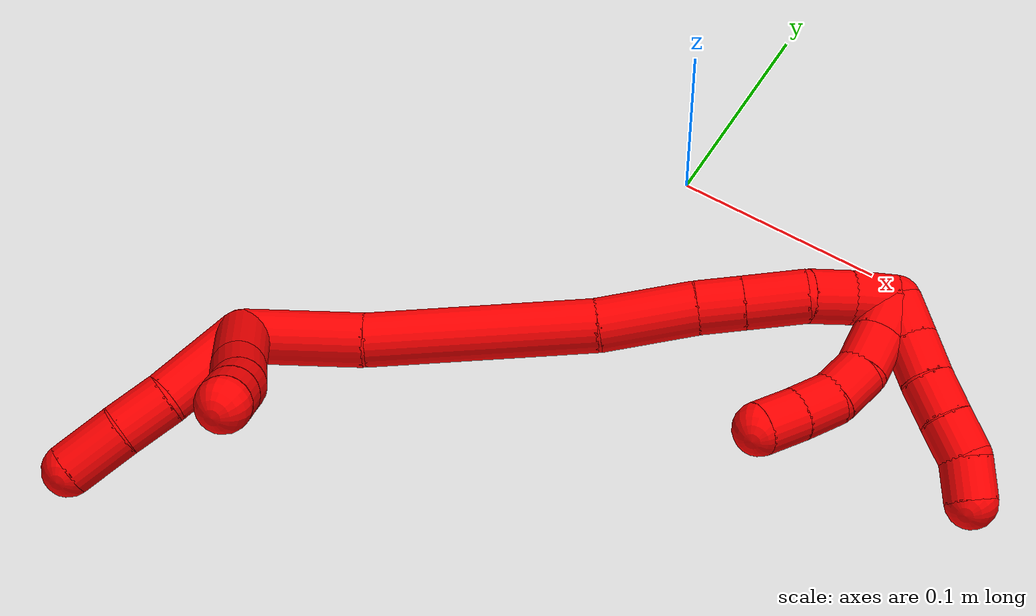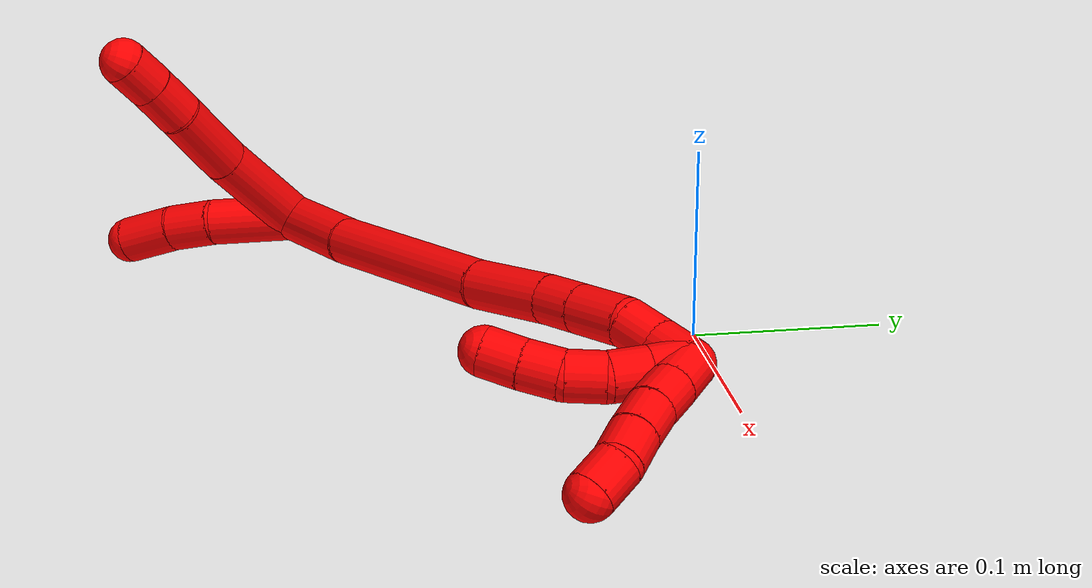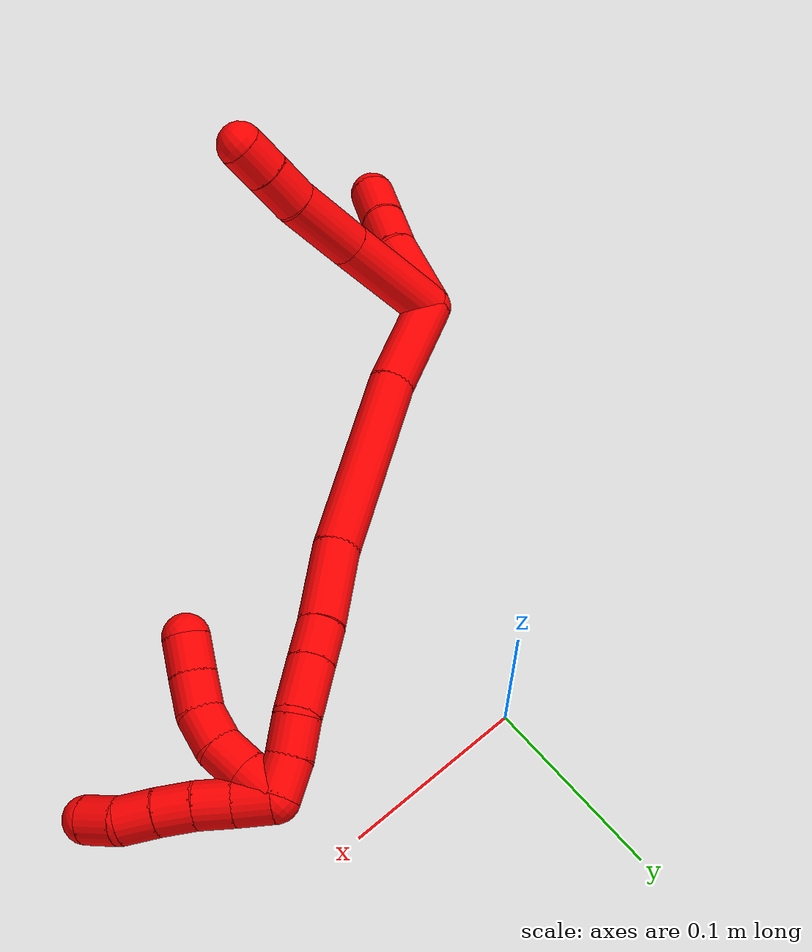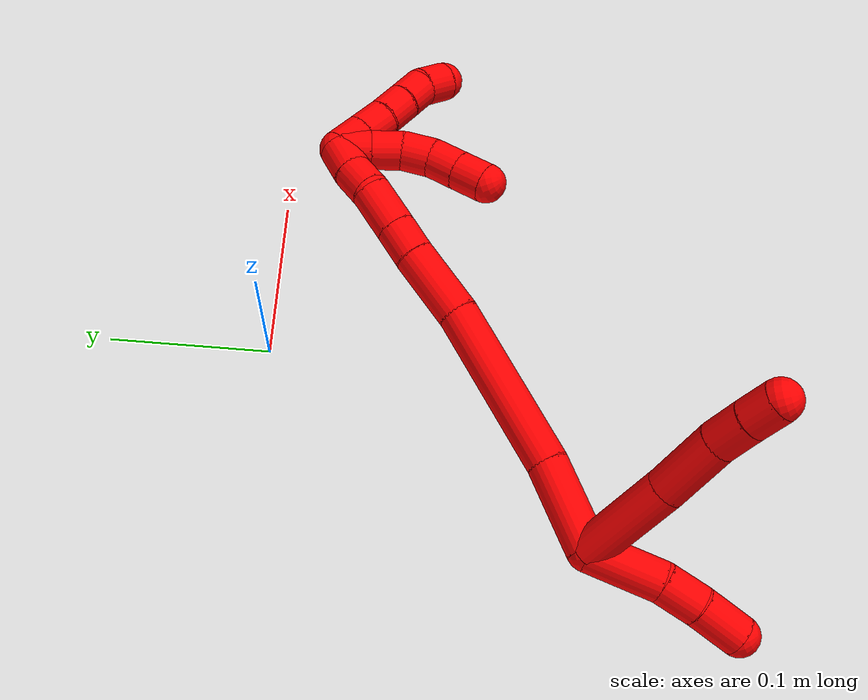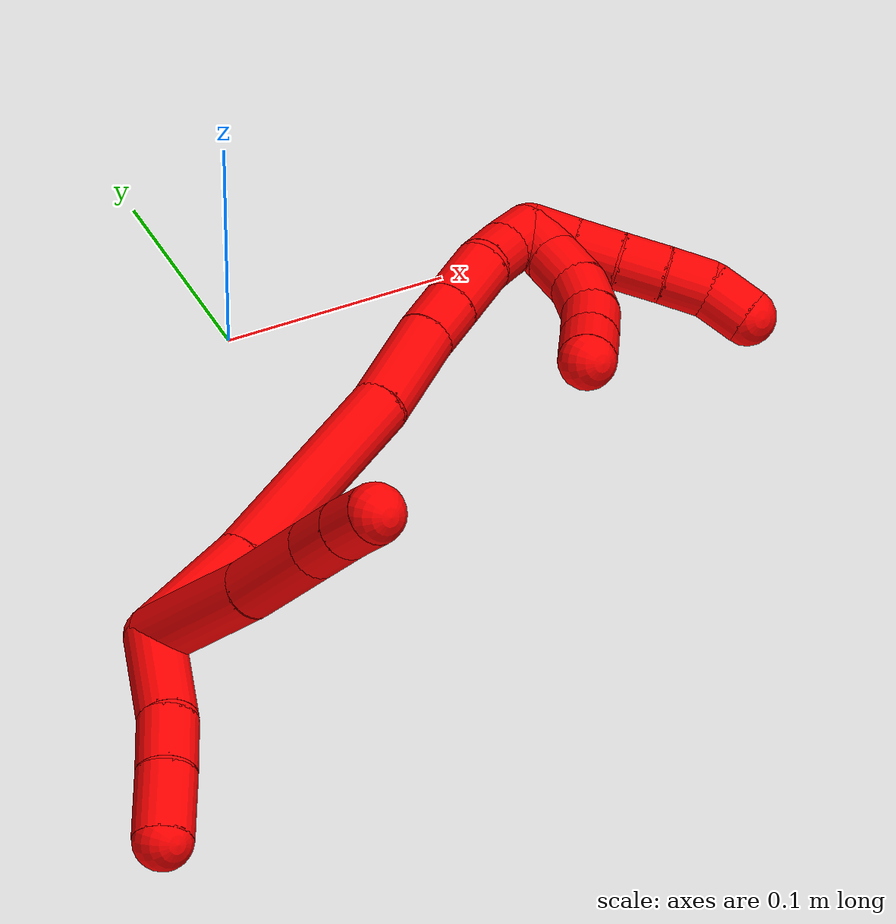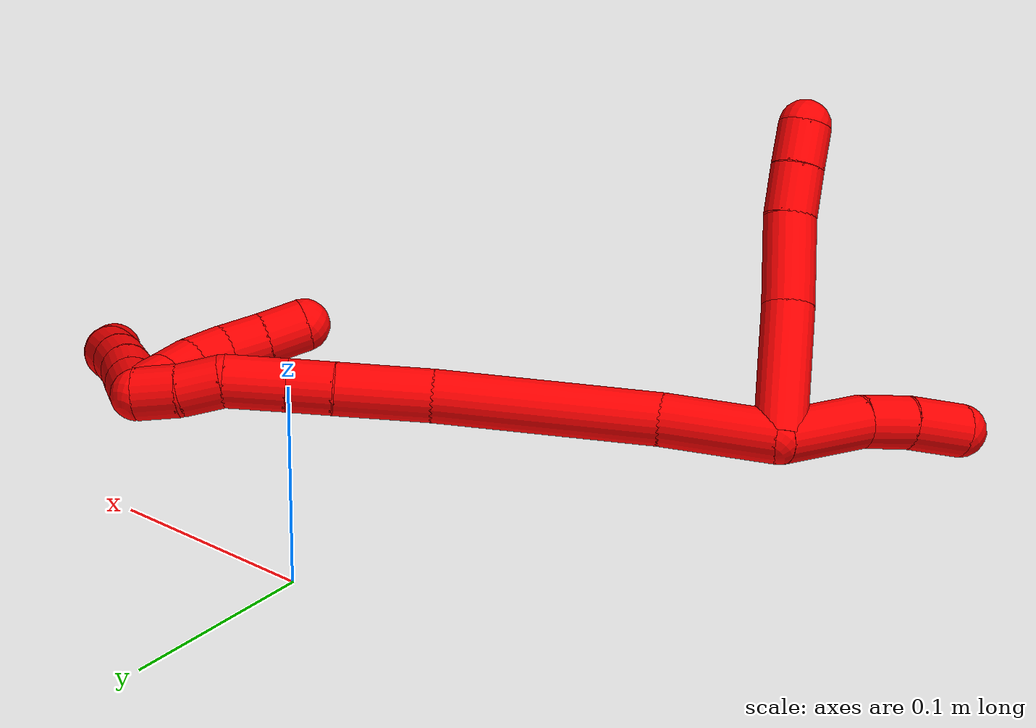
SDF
<sdf version="1.7">
 <world name="default">
  <model name="photoneo_s_sensor">
   <static>1</static>
   <pose>0 0 2 1.57079 1.57079 3.14159</pose>
   <link name="link">
    <inertial><mass>0.1</mass></inertial>
    <sensor name="sensor" type="depth">
     <update_rate>30</update_rate>
     <camera>
      <horizontal_fov>1.22</horizontal_fov>
      <image><width>1920</width><height>1200</height><format>B8G8R8</format></image>
      <clip><near>0.1</near><far>4</far></clip>
      <depth_camera><output>points</output></depth_camera>
     </camera>
     <plugin name="camera_plugin" filename="libgazebo_ros_depth_camera.so">
      <baseline>0.2</baseline>
      <alwaysOn>1</alwaysOn>
      <updateRate>0.0</updateRate>
      <cameraName>camera_ir</cameraName>
      <imageTopicName>/camera/color/image_raw</imageTopicName>
      <cameraInfoTopicName>/camera/color/camera_info</cameraInfoTopicName>
      <depthImageTopicName>/camera/depth/image_raw</depthImageTopicName>
      <depthImageCameraInfoTopicName>/camera/depth/camera_info</depthImageCameraInfoTopicName>
      <pointCloudTopicName>/camera/depth/points</pointCloudTopicName>
      <frameName>fr_optical</frameName>
      <pointCloudCutoff>0.1</pointCloudCutoff>
      <pointCloudCutoffMax>2.0</pointCloudCutoffMax>
      <distortionK1>0</distortionK1>
      <distortionK2>0</distortionK2>
      <distortionK3>0</distortionK3>
      <distortionT1>0</distortionT1>
      <distortionT2>0</distortionT2>
      <CxPrime>0</CxPrime>
      <Cx>0</Cx>
      <Cy>0</Cy>
      <focalLength>0</focalLength>
      <hackBaseline>0</hackBaseline>
     </plugin>
    </sensor>
   </link>
  </model>
  <model name="bin">
   <static>1</static>
   <link name="bottom">
    <collision name="collision-bottom">
     <pose>0 0 -0.01 0 -0 0</pose>
     <geometry><box><size>0.8 0.6 0.02</size></box></geometry>
     <surface>
      <friction><ode><mu>100</mu><mu2>100</mu2></ode></friction>
      <contact><collide_bitmask>65535</collide_bitmask></contact>
     </surface>
    </collision>
   </link>
   <link name="west_wall">
    <collision name="collision-west_wall">
     <pose>-0.41 0 0.1 0 -0 0</pose>
     <geometry><box><size>0.02 0.6 0.2</size></box></geometry>
     <surface>
      <friction><ode><mu>100</mu><mu2>100</mu2></ode></friction>
      <contact><collide_bitmask>65535</collide_bitmask></contact>
     </surface>
    </collision>
   </link>
   <link name="east_wall">
    <collision name="collision-east_wall">
     <pose>0.41 0 0.1 0 -0 0</pose>
     <geometry><box><size>0.02 0.6 0.2</size></box></geometry>
     <surface>
      <friction><ode><mu>100</mu><mu2>100</mu2></ode></friction>
      <contact><collide_bitmask>65535</collide_bitmask></contact>
     </surface>
    </collision>
   </link>
   <link name="south_wall">
    <collision name="collision-south_wall">
     <pose>0 -0.31 0.1 0 -0 0</pose>
     <geometry><box><size>0.8 0.02 0.2</size></box></geometry>
     <surface>
      <friction><ode><mu>100</mu><mu2>100</mu2></ode></friction>
      <contact><collide_bitmask>65535</collide_bitmask></contact>
     </surface>
    </collision>
   </link>
   <link name="north_wall">
    <collision name="collision-north_wall">
     <pose>0 0.31 0.1 0 -0 0</pose>
     <geometry><box><size>0.8 0.02 0.2</size></box></geometry>
     <surface>
      <friction><ode><mu>100</mu><mu2>100</mu2></ode></friction>
      <contact><collide_bitmask>65535</collide_bitmask></contact>
     </surface>
    </collision>
   </link>
  </model>
  <model name="2">
   <static>0</static>
   <link name="2">
    <collision name="collision-cylinder-e_1_2_8">
     <pose>0.014156 -0.001426 0.028158 0.050592 0.465312 0.01199</pose>
     <geometry><cylinder><radius>0.0125</radius><length>0.063096</length></cylinder></geometry>
     <surface>
      <friction><ode><mu>1.16</mu><mu2>1.16</mu2><slip1>0</slip1><slip2>0</slip2></ode></friction>
      <contact><ode><kp>1e+06</kp><kd>1</kd><max_vel>0</max_vel><min_depth>0.001</min_depth></ode></contact>
     </surface>
    </collision>
    <visual name="visual-cylinder-e_1_2_8">
     <pose>0.014156 -0.001426 0.028158 0.050592 0.465312 0.01199</pose>
     <geometry><cylinder><radius>0.0125</radius><length>0.063096</length></cylinder></geometry>
     <material><ambient>1 0 0 1</ambient></material>
    </visual>
    <collision name="collision-cylinder-e_2_8_9">
     <pose>0.03911 -0.003255 0.074662 0.021981 0.531882 0.005988</pose>
     <geometry><cylinder><radius>0.0125</radius><length>0.042584</length></cylinder></geometry>
     <surface>
      <friction><ode><mu>1.16</mu><mu2>1.16</mu2><slip1>0</slip1><slip2>0</slip2></ode></friction>
      <contact><ode><kp>1e+06</kp><kd>1</kd><max_vel>0</max_vel><min_depth>0.001</min_depth></ode></contact>
     </surface>
    </collision>
    <visual name="visual-cylinder-e_2_8_9">
     <pose>0.03911 -0.003255 0.074662 0.021981 0.531882 0.005988</pose>
     <geometry><cylinder><radius>0.0125</radius><length>0.042584</length></cylinder></geometry>
     <material><ambient>1 0 0 1</ambient></material>
    </visual>
    <collision name="collision-cylinder-e_3_9_10">
     <pose>0.05501 -0.002744 0.10361 -0.086031 0.447043 -0.019568</pose>
     <geometry><cylinder><radius>0.0125</radius><length>0.023602</length></cylinder></geometry>
     <surface>
      <friction><ode><mu>1.16</mu><mu2>1.16</mu2><slip1>0</slip1><slip2>0</slip2></ode></friction>
      <contact><ode><kp>1e+06</kp><kd>1</kd><max_vel>0</max_vel><min_depth>0.001</min_depth></ode></contact>
     </surface>
    </collision>
    <visual name="visual-cylinder-e_3_9_10">
     <pose>0.05501 -0.002744 0.10361 -0.086031 0.447043 -0.019568</pose>
     <geometry><cylinder><radius>0.0125</radius><length>0.023602</length></cylinder></geometry>
     <material><ambient>1 0 0 1</ambient></material>
    </visual>
    <collision name="collision-cylinder-e_4_10_6">
     <pose>0.064207 -0.001203 0.123706 -0.065918 0.406475 -0.013589</pose>
     <geometry><cylinder><radius>0.0125</radius><length>0.020718</length></cylinder></geometry>
     <surface>
      <friction><ode><mu>1.16</mu><mu2>1.16</mu2><slip1>0</slip1><slip2>0</slip2></ode></friction>
      <contact><ode><kp>1e+06</kp><kd>1</kd><max_vel>0</max_vel><min_depth>0.001</min_depth></ode></contact>
     </surface>
    </collision>
    <visual name="visual-cylinder-e_4_10_6">
     <pose>0.064207 -0.001203 0.123706 -0.065918 0.406475 -0.013589</pose>
     <geometry><cylinder><radius>0.0125</radius><length>0.020718</length></cylinder></geometry>
     <material><ambient>1 0 0 1</ambient></material>
    </visual>
    <collision name="collision-cylinder-e_1_2_11">
     <pose>-0.015106 0.001531 0.016909 -0.090323 -0.727089 0.034384</pose>
     <geometry><cylinder><radius>0.0125</radius><length>0.045452</length></cylinder></geometry>
     <surface>
      <friction><ode><mu>1.16</mu><mu2>1.16</mu2><slip1>0</slip1><slip2>0</slip2></ode></friction>
      <contact><ode><kp>1e+06</kp><kd>1</kd><max_vel>0</max_vel><min_depth>0.001</min_depth></ode></contact>
     </surface>
    </collision>
    <visual name="visual-cylinder-e_1_2_11">
     <pose>-0.015106 0.001531 0.016909 -0.090323 -0.727089 0.034384</pose>
     <geometry><cylinder><radius>0.0125</radius><length>0.045452</length></cylinder></geometry>
     <material><ambient>1 0 0 1</ambient></material>
    </visual>
    <collision name="collision-cylinder-e_2_11_12">
     <pose>-0.040027 0.004482 0.041402 -0.185044 -0.904647 0.090113</pose>
     <geometry><cylinder><radius>0.0125</radius><length>0.024968</length></cylinder></geometry>
     <surface>
      <friction><ode><mu>1.16</mu><mu2>1.16</mu2><slip1>0</slip1><slip2>0</slip2></ode></friction>
      <contact><ode><kp>1e+06</kp><kd>1</kd><max_vel>0</max_vel><min_depth>0.001</min_depth></ode></contact>
     </surface>
    </collision>
    <visual name="visual-cylinder-e_2_11_12">
     <pose>-0.040027 0.004482 0.041402 -0.185044 -0.904647 0.090113</pose>
     <geometry><cylinder><radius>0.0125</radius><length>0.024968</length></cylinder></geometry>
     <material><ambient>1 0 0 1</ambient></material>
    </visual>
    <collision name="collision-cylinder-e_3_12_5">
     <pose>-0.062447 0.006983 0.056645 -0.14022 -1.02038 0.078556</pose>
     <geometry><cylinder><radius>0.0125</radius><length>0.02958</length></cylinder></geometry>
     <surface>
      <friction><ode><mu>1.16</mu><mu2>1.16</mu2><slip1>0</slip1><slip2>0</slip2></ode></friction>
      <contact><ode><kp>1e+06</kp><kd>1</kd><max_vel>0</max_vel><min_depth>0.001</min_depth></ode></contact>
     </surface>
    </collision>
    <visual name="visual-cylinder-e_3_12_5">
     <pose>-0.062447 0.006983 0.056645 -0.14022 -1.02038 0.078556</pose>
     <geometry><cylinder><radius>0.0125</radius><length>0.02958</length></cylinder></geometry>
     <material><ambient>1 0 0 1</ambient></material>
    </visual>
    <collision name="collision-cylinder-e_1_2_13">
     <pose>0.01962 -0.018529 -0.006955 1.9299 0.781042 1.07235</pose>
     <geometry><cylinder><radius>0.0125</radius><length>0.055736</length></cylinder></geometry>
     <surface>
      <friction><ode><mu>1.16</mu><mu2>1.16</mu2><slip1>0</slip1><slip2>0</slip2></ode></friction>
      <contact><ode><kp>1e+06</kp><kd>1</kd><max_vel>0</max_vel><min_depth>0.001</min_depth></ode></contact>
     </surface>
    </collision>
    <visual name="visual-cylinder-e_1_2_13">
     <pose>0.01962 -0.018529 -0.006955 1.9299 0.781042 1.07235</pose>
     <geometry><cylinder><radius>0.0125</radius><length>0.055736</length></cylinder></geometry>
     <material><ambient>1 0 0 1</ambient></material>
    </visual>
    <collision name="collision-cylinder-e_2_13_14">
     <pose>0.077533 -0.068939 -0.031754 2.08104 0.808904 1.26129</pose>
     <geometry><cylinder><radius>0.0125</radius><length>0.105852</length></cylinder></geometry>
     <surface>
      <friction><ode><mu>1.16</mu><mu2>1.16</mu2><slip1>0</slip1><slip2>0</slip2></ode></friction>
      <contact><ode><kp>1e+06</kp><kd>1</kd><max_vel>0</max_vel><min_depth>0.001</min_depth></ode></contact>
     </surface>
    </collision>
    <visual name="visual-cylinder-e_2_13_14">
     <pose>0.077533 -0.068939 -0.031754 2.08104 0.808904 1.26129</pose>
     <geometry><cylinder><radius>0.0125</radius><length>0.105852</length></cylinder></geometry>
     <material><ambient>1 0 0 1</ambient></material>
    </visual>
    <collision name="collision-cylinder-e_3_14_15">
     <pose>0.132871 -0.112598 -0.059075 2.24836 0.84522 1.50796</pose>
     <geometry><cylinder><radius>0.0125</radius><length>0.045568</length></cylinder></geometry>
     <surface>
      <friction><ode><mu>1.16</mu><mu2>1.16</mu2><slip1>0</slip1><slip2>0</slip2></ode></friction>
      <contact><ode><kp>1e+06</kp><kd>1</kd><max_vel>0</max_vel><min_depth>0.001</min_depth></ode></contact>
     </surface>
    </collision>
    <visual name="visual-cylinder-e_3_14_15">
     <pose>0.132871 -0.112598 -0.059075 2.24836 0.84522 1.50796</pose>
     <geometry><cylinder><radius>0.0125</radius><length>0.045568</length></cylinder></geometry>
     <material><ambient>1 0 0 1</ambient></material>
    </visual>
    <collision name="collision-cylinder-e_4_15_16">
     <pose>0.157743 -0.130576 -0.072671 2.15723 0.810531 1.34962</pose>
     <geometry><cylinder><radius>0.0125</radius><length>0.0216</length></cylinder></geometry>
     <surface>
      <friction><ode><mu>1.16</mu><mu2>1.16</mu2><slip1>0</slip1><slip2>0</slip2></ode></friction>
      <contact><ode><kp>1e+06</kp><kd>1</kd><max_vel>0</max_vel><min_depth>0.001</min_depth></ode></contact>
     </surface>
    </collision>
    <visual name="visual-cylinder-e_4_15_16">
     <pose>0.157743 -0.130576 -0.072671 2.15723 0.810531 1.34962</pose>
     <geometry><cylinder><radius>0.0125</radius><length>0.0216</length></cylinder></geometry>
     <material><ambient>1 0 0 1</ambient></material>
    </visual>
    <collision name="collision-cylinder-e_5_16_17">
     <pose>0.176187 -0.145198 -0.082496 2.16628 0.806738 1.35514</pose>
     <geometry><cylinder><radius>0.0125</radius><length>0.02941</length></cylinder></geometry>
     <surface>
      <friction><ode><mu>1.16</mu><mu2>1.16</mu2><slip1>0</slip1><slip2>0</slip2></ode></friction>
      <contact><ode><kp>1e+06</kp><kd>1</kd><max_vel>0</max_vel><min_depth>0.001</min_depth></ode></contact>
     </surface>
    </collision>
    <visual name="visual-cylinder-e_5_16_17">
     <pose>0.176187 -0.145198 -0.082496 2.16628 0.806738 1.35514</pose>
     <geometry><cylinder><radius>0.0125</radius><length>0.02941</length></cylinder></geometry>
     <material><ambient>1 0 0 1</ambient></material>
    </visual>
    <collision name="collision-cylinder-e_6_17_18">
     <pose>0.191835 -0.160805 -0.093784 2.23123 0.50516 0.970496</pose>
     <geometry><cylinder><radius>0.0125</radius><length>0.020792</length></cylinder></geometry>
     <surface>
      <friction><ode><mu>1.16</mu><mu2>1.16</mu2><slip1>0</slip1><slip2>0</slip2></ode></friction>
      <contact><ode><kp>1e+06</kp><kd>1</kd><max_vel>0</max_vel><min_depth>0.001</min_depth></ode></contact>
     </surface>
    </collision>
    <visual name="visual-cylinder-e_6_17_18">
     <pose>0.191835 -0.160805 -0.093784 2.23123 0.50516 0.970496</pose>
     <geometry><cylinder><radius>0.0125</radius><length>0.020792</length></cylinder></geometry>
     <material><ambient>1 0 0 1</ambient></material>
    </visual>
    <collision name="collision-cylinder-e_7_18_1">
     <pose>0.202672 -0.175712 -0.10353 2.06552 0.584592 0.934078</pose>
     <geometry><cylinder><radius>0.0125</radius><length>0.021042</length></cylinder></geometry>
     <surface>
      <friction><ode><mu>1.16</mu><mu2>1.16</mu2><slip1>0</slip1><slip2>0</slip2></ode></friction>
      <contact><ode><kp>1e+06</kp><kd>1</kd><max_vel>0</max_vel><min_depth>0.001</min_depth></ode></contact>
     </surface>
    </collision>
    <visual name="visual-cylinder-e_7_18_1">
     <pose>0.202672 -0.175712 -0.10353 2.06552 0.584592 0.934078</pose>
     <geometry><cylinder><radius>0.0125</radius><length>0.021042</length></cylinder></geometry>
     <material><ambient>1 0 0 1</ambient></material>
    </visual>
    <collision name="collision-cylinder-e_1_1_19">
     <pose>0.203971 -0.185882 -0.099112 0.277825 -0.467587 -0.066568</pose>
     <geometry><cylinder><radius>0.0125</radius><length>0.02</length></cylinder></geometry>
     <surface>
      <friction><ode><mu>1.16</mu><mu2>1.16</mu2><slip1>0</slip1><slip2>0</slip2></ode></friction>
      <contact><ode><kp>1e+06</kp><kd>1</kd><max_vel>0</max_vel><min_depth>0.001</min_depth></ode></contact>
     </surface>
    </collision>
    <visual name="visual-cylinder-e_1_1_19">
     <pose>0.203971 -0.185882 -0.099112 0.277825 -0.467587 -0.066568</pose>
     <geometry><cylinder><radius>0.0125</radius><length>0.02</length></cylinder></geometry>
     <material><ambient>1 0 0 1</ambient></material>
    </visual>
    <collision name="collision-cylinder-e_2_19_20">
     <pose>0.195137 -0.190613 -0.081806 0.255993 -0.447466 -0.058553</pose>
     <geometry><cylinder><radius>0.0125</radius><length>0.02</length></cylinder></geometry>
     <surface>
      <friction><ode><mu>1.16</mu><mu2>1.16</mu2><slip1>0</slip1><slip2>0</slip2></ode></friction>
      <contact><ode><kp>1e+06</kp><kd>1</kd><max_vel>0</max_vel><min_depth>0.001</min_depth></ode></contact>
     </surface>
    </collision>
    <visual name="visual-cylinder-e_2_19_20">
     <pose>0.195137 -0.190613 -0.081806 0.255993 -0.447466 -0.058553</pose>
     <geometry><cylinder><radius>0.0125</radius><length>0.02</length></cylinder></geometry>
     <material><ambient>1 0 0 1</ambient></material>
    </visual>
    <collision name="collision-cylinder-e_3_20_21">
     <pose>0.185467 -0.192291 -0.064653 -0.071611 -0.563757 0.020746</pose>
     <geometry><cylinder><radius>0.0125</radius><length>0.02</length></cylinder></geometry>
     <surface>
      <friction><ode><mu>1.16</mu><mu2>1.16</mu2><slip1>0</slip1><slip2>0</slip2></ode></friction>
      <contact><ode><kp>1e+06</kp><kd>1</kd><max_vel>0</max_vel><min_depth>0.001</min_depth></ode></contact>
     </surface>
    </collision>
    <visual name="visual-cylinder-e_3_20_21">
     <pose>0.185467 -0.192291 -0.064653 -0.071611 -0.563757 0.020746</pose>
     <geometry><cylinder><radius>0.0125</radius><length>0.02</length></cylinder></geometry>
     <material><ambient>1 0 0 1</ambient></material>
    </visual>
    <collision name="collision-cylinder-e_4_21_22">
     <pose>0.174703 -0.188139 -0.048604 -0.435692 -0.572769 0.130187</pose>
     <geometry><cylinder><radius>0.0125</radius><length>0.02</length></cylinder></geometry>
     <surface>
      <friction><ode><mu>1.16</mu><mu2>1.16</mu2><slip1>0</slip1><slip2>0</slip2></ode></friction>
      <contact><ode><kp>1e+06</kp><kd>1</kd><max_vel>0</max_vel><min_depth>0.001</min_depth></ode></contact>
     </surface>
    </collision>
    <visual name="visual-cylinder-e_4_21_22">
     <pose>0.174703 -0.188139 -0.048604 -0.435692 -0.572769 0.130187</pose>
     <geometry><cylinder><radius>0.0125</radius><length>0.02</length></cylinder></geometry>
     <material><ambient>1 0 0 1</ambient></material>
    </visual>
    <collision name="collision-cylinder-e_5_22_4">
     <pose>0.164253 -0.180623 -0.033308 -0.477152 -0.527189 0.131083</pose>
     <geometry><cylinder><radius>0.0125</radius><length>0.02</length></cylinder></geometry>
     <surface>
      <friction><ode><mu>1.16</mu><mu2>1.16</mu2><slip1>0</slip1><slip2>0</slip2></ode></friction>
      <contact><ode><kp>1e+06</kp><kd>1</kd><max_vel>0</max_vel><min_depth>0.001</min_depth></ode></contact>
     </surface>
    </collision>
    <visual name="visual-cylinder-e_5_22_4">
     <pose>0.164253 -0.180623 -0.033308 -0.477152 -0.527189 0.131083</pose>
     <geometry><cylinder><radius>0.0125</radius><length>0.02</length></cylinder></geometry>
     <material><ambient>1 0 0 1</ambient></material>
    </visual>
    <collision name="collision-cylinder-e_1_1_23">
     <pose>0.208082 -0.191696 -0.102078 0.97364 -0.039628 -0.020977</pose>
     <geometry><cylinder><radius>0.0125</radius><length>0.02</length></cylinder></geometry>
     <surface>
      <friction><ode><mu>1.16</mu><mu2>1.16</mu2><slip1>0</slip1><slip2>0</slip2></ode></friction>
      <contact><ode><kp>1e+06</kp><kd>1</kd><max_vel>0</max_vel><min_depth>0.001</min_depth></ode></contact>
     </surface>
    </collision>
    <visual name="visual-cylinder-e_1_1_23">
     <pose>0.208082 -0.191696 -0.102078 0.97364 -0.039628 -0.020977</pose>
     <geometry><cylinder><radius>0.0125</radius><length>0.02</length></cylinder></geometry>
     <material><ambient>1 0 0 1</ambient></material>
    </visual>
    <collision name="collision-cylinder-e_2_23_24">
     <pose>0.207449 -0.208035 -0.090567 0.940489 -0.023753 -0.012073</pose>
     <geometry><cylinder><radius>0.0125</radius><length>0.02</length></cylinder></geometry>
     <surface>
      <friction><ode><mu>1.16</mu><mu2>1.16</mu2><slip1>0</slip1><slip2>0</slip2></ode></friction>
      <contact><ode><kp>1e+06</kp><kd>1</kd><max_vel>0</max_vel><min_depth>0.001</min_depth></ode></contact>
     </surface>
    </collision>
    <visual name="visual-cylinder-e_2_23_24">
     <pose>0.207449 -0.208035 -0.090567 0.940489 -0.023753 -0.012073</pose>
     <geometry><cylinder><radius>0.0125</radius><length>0.02</length></cylinder></geometry>
     <material><ambient>1 0 0 1</ambient></material>
    </visual>
    <collision name="collision-cylinder-e_3_24_25">
     <pose>0.20712 -0.224728 -0.0796 1.03856 -0.009117 -0.005212</pose>
     <geometry><cylinder><radius>0.0125</radius><length>0.02</length></cylinder></geometry>
     <surface>
      <friction><ode><mu>1.16</mu><mu2>1.16</mu2><slip1>0</slip1><slip2>0</slip2></ode></friction>
      <contact><ode><kp>1e+06</kp><kd>1</kd><max_vel>0</max_vel><min_depth>0.001</min_depth></ode></contact>
     </surface>
    </collision>
    <visual name="visual-cylinder-e_3_24_25">
     <pose>0.20712 -0.224728 -0.0796 1.03856 -0.009117 -0.005212</pose>
     <geometry><cylinder><radius>0.0125</radius><length>0.02</length></cylinder></geometry>
     <material><ambient>1 0 0 1</ambient></material>
    </visual>
    <collision name="collision-cylinder-e_4_25_26">
     <pose>0.20679 -0.242255 -0.069993 1.10024 -0.023925 -0.014673</pose>
     <geometry><cylinder><radius>0.0125</radius><length>0.02</length></cylinder></geometry>
     <surface>
      <friction><ode><mu>1.16</mu><mu2>1.16</mu2><slip1>0</slip1><slip2>0</slip2></ode></friction>
      <contact><ode><kp>1e+06</kp><kd>1</kd><max_vel>0</max_vel><min_depth>0.001</min_depth></ode></contact>
     </surface>
    </collision>
    <visual name="visual-cylinder-e_4_25_26">
     <pose>0.20679 -0.242255 -0.069993 1.10024 -0.023925 -0.014673</pose>
     <geometry><cylinder><radius>0.0125</radius><length>0.02</length></cylinder></geometry>
     <material><ambient>1 0 0 1</ambient></material>
    </visual>
    <collision name="collision-cylinder-e_5_26_3">
     <pose>0.203204 -0.258972 -0.060182 0.976222 -0.341192 -0.182431</pose>
     <geometry><cylinder><radius>0.0125</radius><length>0.02</length></cylinder></geometry>
     <surface>
      <friction><ode><mu>1.16</mu><mu2>1.16</mu2><slip1>0</slip1><slip2>0</slip2></ode></friction>
      <contact><ode><kp>1e+06</kp><kd>1</kd><max_vel>0</max_vel><min_depth>0.001</min_depth></ode></contact>
     </surface>
    </collision>
    <visual name="visual-cylinder-e_5_26_3">
     <pose>0.203204 -0.258972 -0.060182 0.976222 -0.341192 -0.182431</pose>
     <geometry><cylinder><radius>0.0125</radius><length>0.02</length></cylinder></geometry>
     <material><ambient>1 0 0 1</ambient></material>
    </visual>
    <collision name="collision-sphere-3">
     <pose>0.199858 -0.266778 -0.054903 0 -0 0</pose>
     <geometry><sphere><radius>0.0125</radius></sphere></geometry>
     <surface>
      <friction><ode><mu>1.16</mu><mu2>1.16</mu2><slip1>0</slip1><slip2>0</slip2></ode></friction>
      <contact><ode><kp>1e+06</kp><kd>1</kd><max_vel>0</max_vel><min_depth>0.001</min_depth></ode></contact>
     </surface>
    </collision>
    <visual name="visual-sphere-3">
     <pose>0.199858 -0.266778 -0.054903 0 -0 0</pose>
     <geometry><sphere><radius>0.0125</radius></sphere></geometry>
     <material><ambient>1 0 0 1</ambient></material>
    </visual>
    <collision name="collision-sphere-26">
     <pose>0.20655 -0.251166 -0.065461 0 -0 0</pose>
     <geometry><sphere><radius>0.0125</radius></sphere></geometry>
     <surface>
      <friction><ode><mu>1.16</mu><mu2>1.16</mu2><slip1>0</slip1><slip2>0</slip2></ode></friction>
      <contact><ode><kp>1e+06</kp><kd>1</kd><max_vel>0</max_vel><min_depth>0.001</min_depth></ode></contact>
     </surface>
    </collision>
    <visual name="visual-sphere-26">
     <pose>0.20655 -0.251166 -0.065461 0 -0 0</pose>
     <geometry><sphere><radius>0.0125</radius></sphere></geometry>
     <material><ambient>1 0 0 1</ambient></material>
    </visual>
    <collision name="collision-sphere-25">
     <pose>0.207029 -0.233344 -0.074526 0 -0 0</pose>
     <geometry><sphere><radius>0.0125</radius></sphere></geometry>
     <surface>
      <friction><ode><mu>1.16</mu><mu2>1.16</mu2><slip1>0</slip1><slip2>0</slip2></ode></friction>
      <contact><ode><kp>1e+06</kp><kd>1</kd><max_vel>0</max_vel><min_depth>0.001</min_depth></ode></contact>
     </surface>
    </collision>
    <visual name="visual-sphere-25">
     <pose>0.207029 -0.233344 -0.074526 0 -0 0</pose>
     <geometry><sphere><radius>0.0125</radius></sphere></geometry>
     <material><ambient>1 0 0 1</ambient></material>
    </visual>
    <collision name="collision-sphere-24">
     <pose>0.207211 -0.216112 -0.084675 0 -0 0</pose>
     <geometry><sphere><radius>0.0125</radius></sphere></geometry>
     <surface>
      <friction><ode><mu>1.16</mu><mu2>1.16</mu2><slip1>0</slip1><slip2>0</slip2></ode></friction>
      <contact><ode><kp>1e+06</kp><kd>1</kd><max_vel>0</max_vel><min_depth>0.001</min_depth></ode></contact>
     </surface>
    </collision>
    <visual name="visual-sphere-24">
     <pose>0.207211 -0.216112 -0.084675 0 -0 0</pose>
     <geometry><sphere><radius>0.0125</radius></sphere></geometry>
     <material><ambient>1 0 0 1</ambient></material>
    </visual>
    <collision name="collision-sphere-23">
     <pose>0.207686 -0.199959 -0.096459 0 -0 0</pose>
     <geometry><sphere><radius>0.0125</radius></sphere></geometry>
     <surface>
      <friction><ode><mu>1.16</mu><mu2>1.16</mu2><slip1>0</slip1><slip2>0</slip2></ode></friction>
      <contact><ode><kp>1e+06</kp><kd>1</kd><max_vel>0</max_vel><min_depth>0.001</min_depth></ode></contact>
     </surface>
    </collision>
    <visual name="visual-sphere-23">
     <pose>0.207686 -0.199959 -0.096459 0 -0 0</pose>
     <geometry><sphere><radius>0.0125</radius></sphere></geometry>
     <material><ambient>1 0 0 1</ambient></material>
    </visual>
    <collision name="collision-sphere-4">
     <pose>0.159222 -0.176654 -0.025631 0 -0 0</pose>
     <geometry><sphere><radius>0.0125</radius></sphere></geometry>
     <surface>
      <friction><ode><mu>1.16</mu><mu2>1.16</mu2><slip1>0</slip1><slip2>0</slip2></ode></friction>
      <contact><ode><kp>1e+06</kp><kd>1</kd><max_vel>0</max_vel><min_depth>0.001</min_depth></ode></contact>
     </surface>
    </collision>
    <visual name="visual-sphere-4">
     <pose>0.159222 -0.176654 -0.025631 0 -0 0</pose>
     <geometry><sphere><radius>0.0125</radius></sphere></geometry>
     <material><ambient>1 0 0 1</ambient></material>
    </visual>
    <collision name="collision-sphere-22">
     <pose>0.169284 -0.184592 -0.040985 0 -0 0</pose>
     <geometry><sphere><radius>0.0125</radius></sphere></geometry>
     <surface>
      <friction><ode><mu>1.16</mu><mu2>1.16</mu2><slip1>0</slip1><slip2>0</slip2></ode></friction>
      <contact><ode><kp>1e+06</kp><kd>1</kd><max_vel>0</max_vel><min_depth>0.001</min_depth></ode></contact>
     </surface>
    </collision>
    <visual name="visual-sphere-22">
     <pose>0.169284 -0.184592 -0.040985 0 -0 0</pose>
     <geometry><sphere><radius>0.0125</radius></sphere></geometry>
     <material><ambient>1 0 0 1</ambient></material>
    </visual>
    <collision name="collision-sphere-21">
     <pose>0.180123 -0.191686 -0.056222 0 -0 0</pose>
     <geometry><sphere><radius>0.0125</radius></sphere></geometry>
     <surface>
      <friction><ode><mu>1.16</mu><mu2>1.16</mu2><slip1>0</slip1><slip2>0</slip2></ode></friction>
      <contact><ode><kp>1e+06</kp><kd>1</kd><max_vel>0</max_vel><min_depth>0.001</min_depth></ode></contact>
     </surface>
    </collision>
    <visual name="visual-sphere-21">
     <pose>0.180123 -0.191686 -0.056222 0 -0 0</pose>
     <geometry><sphere><radius>0.0125</radius></sphere></geometry>
     <material><ambient>1 0 0 1</ambient></material>
    </visual>
    <collision name="collision-sphere-20">
     <pose>0.19081 -0.192896 -0.073084 0 -0 0</pose>
     <geometry><sphere><radius>0.0125</radius></sphere></geometry>
     <surface>
      <friction><ode><mu>1.16</mu><mu2>1.16</mu2><slip1>0</slip1><slip2>0</slip2></ode></friction>
      <contact><ode><kp>1e+06</kp><kd>1</kd><max_vel>0</max_vel><min_depth>0.001</min_depth></ode></contact>
     </surface>
    </collision>
    <visual name="visual-sphere-20">
     <pose>0.19081 -0.192896 -0.073084 0 -0 0</pose>
     <geometry><sphere><radius>0.0125</radius></sphere></geometry>
     <material><ambient>1 0 0 1</ambient></material>
    </visual>
    <collision name="collision-sphere-11">
     <pose>-0.030212 0.003063 0.033819 0 -0 0</pose>
     <geometry><sphere><radius>0.0125</radius></sphere></geometry>
     <surface>
      <friction><ode><mu>1.16</mu><mu2>1.16</mu2><slip1>0</slip1><slip2>0</slip2></ode></friction>
      <contact><ode><kp>1e+06</kp><kd>1</kd><max_vel>0</max_vel><min_depth>0.001</min_depth></ode></contact>
     </surface>
    </collision>
    <visual name="visual-sphere-11">
     <pose>-0.030212 0.003063 0.033819 0 -0 0</pose>
     <geometry><sphere><radius>0.0125</radius></sphere></geometry>
     <material><ambient>1 0 0 1</ambient></material>
    </visual>
    <collision name="collision-sphere-6">
     <pose>0.068303 -0.000576 0.1332 0 -0 0</pose>
     <geometry><sphere><radius>0.0125</radius></sphere></geometry>
     <surface>
      <friction><ode><mu>1.16</mu><mu2>1.16</mu2><slip1>0</slip1><slip2>0</slip2></ode></friction>
      <contact><ode><kp>1e+06</kp><kd>1</kd><max_vel>0</max_vel><min_depth>0.001</min_depth></ode></contact>
     </surface>
    </collision>
    <visual name="visual-sphere-6">
     <pose>0.068303 -0.000576 0.1332 0 -0 0</pose>
     <geometry><sphere><radius>0.0125</radius></sphere></geometry>
     <material><ambient>1 0 0 1</ambient></material>
    </visual>
    <collision name="collision-sphere-10">
     <pose>0.060111 -0.00183 0.114211 0 -0 0</pose>
     <geometry><sphere><radius>0.0125</radius></sphere></geometry>
     <surface>
      <friction><ode><mu>1.16</mu><mu2>1.16</mu2><slip1>0</slip1><slip2>0</slip2></ode></friction>
      <contact><ode><kp>1e+06</kp><kd>1</kd><max_vel>0</max_vel><min_depth>0.001</min_depth></ode></contact>
     </surface>
    </collision>
    <visual name="visual-sphere-10">
     <pose>0.060111 -0.00183 0.114211 0 -0 0</pose>
     <geometry><sphere><radius>0.0125</radius></sphere></geometry>
     <material><ambient>1 0 0 1</ambient></material>
    </visual>
    <collision name="collision-sphere-9">
     <pose>0.049908 -0.003658 0.093008 0 -0 0</pose>
     <geometry><sphere><radius>0.0125</radius></sphere></geometry>
     <surface>
      <friction><ode><mu>1.16</mu><mu2>1.16</mu2><slip1>0</slip1><slip2>0</slip2></ode></friction>
      <contact><ode><kp>1e+06</kp><kd>1</kd><max_vel>0</max_vel><min_depth>0.001</min_depth></ode></contact>
     </surface>
    </collision>
    <visual name="visual-sphere-9">
     <pose>0.049908 -0.003658 0.093008 0 -0 0</pose>
     <geometry><sphere><radius>0.0125</radius></sphere></geometry>
     <material><ambient>1 0 0 1</ambient></material>
    </visual>
    <collision name="collision-sphere-2">
     <geometry><sphere><radius>0.0125</radius></sphere></geometry>
     <surface>
      <friction><ode><mu>1.16</mu><mu2>1.16</mu2><slip1>0</slip1><slip2>0</slip2></ode></friction>
      <contact><ode><kp>1e+06</kp><kd>1</kd><max_vel>0</max_vel><min_depth>0.001</min_depth></ode></contact>
     </surface>
    </collision>
    <visual name="visual-sphere-2">
     <geometry><sphere><radius>0.0125</radius></sphere></geometry>
     <material><ambient>1 0 0 1</ambient></material>
    </visual>
    <collision name="collision-sphere-19">
     <pose>0.199464 -0.18833 -0.090528 0 -0 0</pose>
     <geometry><sphere><radius>0.0125</radius></sphere></geometry>
     <surface>
      <friction><ode><mu>1.16</mu><mu2>1.16</mu2><slip1>0</slip1><slip2>0</slip2></ode></friction>
      <contact><ode><kp>1e+06</kp><kd>1</kd><max_vel>0</max_vel><min_depth>0.001</min_depth></ode></contact>
     </surface>
    </collision>
    <visual name="visual-sphere-19">
     <pose>0.199464 -0.18833 -0.090528 0 -0 0</pose>
     <geometry><sphere><radius>0.0125</radius></sphere></geometry>
     <material><ambient>1 0 0 1</ambient></material>
    </visual>
    <collision name="collision-sphere-8">
     <pose>0.028311 -0.002852 0.056315 0 -0 0</pose>
     <geometry><sphere><radius>0.0125</radius></sphere></geometry>
     <surface>
      <friction><ode><mu>1.16</mu><mu2>1.16</mu2><slip1>0</slip1><slip2>0</slip2></ode></friction>
      <contact><ode><kp>1e+06</kp><kd>1</kd><max_vel>0</max_vel><min_depth>0.001</min_depth></ode></contact>
     </surface>
    </collision>
    <visual name="visual-sphere-8">
     <pose>0.028311 -0.002852 0.056315 0 -0 0</pose>
     <geometry><sphere><radius>0.0125</radius></sphere></geometry>
     <material><ambient>1 0 0 1</ambient></material>
    </visual>
    <collision name="collision-sphere-12">
     <pose>-0.049842 0.005902 0.048985 0 -0 0</pose>
     <geometry><sphere><radius>0.0125</radius></sphere></geometry>
     <surface>
      <friction><ode><mu>1.16</mu><mu2>1.16</mu2><slip1>0</slip1><slip2>0</slip2></ode></friction>
      <contact><ode><kp>1e+06</kp><kd>1</kd><max_vel>0</max_vel><min_depth>0.001</min_depth></ode></contact>
     </surface>
    </collision>
    <visual name="visual-sphere-12">
     <pose>-0.049842 0.005902 0.048985 0 -0 0</pose>
     <geometry><sphere><radius>0.0125</radius></sphere></geometry>
     <material><ambient>1 0 0 1</ambient></material>
    </visual>
    <collision name="collision-sphere-5">
     <pose>-0.075053 0.008064 0.064305 0 -0 0</pose>
     <geometry><sphere><radius>0.0125</radius></sphere></geometry>
     <surface>
      <friction><ode><mu>1.16</mu><mu2>1.16</mu2><slip1>0</slip1><slip2>0</slip2></ode></friction>
      <contact><ode><kp>1e+06</kp><kd>1</kd><max_vel>0</max_vel><min_depth>0.001</min_depth></ode></contact>
     </surface>
    </collision>
    <visual name="visual-sphere-5">
     <pose>-0.075053 0.008064 0.064305 0 -0 0</pose>
     <geometry><sphere><radius>0.0125</radius></sphere></geometry>
     <material><ambient>1 0 0 1</ambient></material>
    </visual>
    <collision name="collision-sphere-13">
     <pose>0.03924 -0.037058 -0.013911 0 -0 0</pose>
     <geometry><sphere><radius>0.0125</radius></sphere></geometry>
     <surface>
      <friction><ode><mu>1.16</mu><mu2>1.16</mu2><slip1>0</slip1><slip2>0</slip2></ode></friction>
      <contact><ode><kp>1e+06</kp><kd>1</kd><max_vel>0</max_vel><min_depth>0.001</min_depth></ode></contact>
     </surface>
    </collision>
    <visual name="visual-sphere-13">
     <pose>0.03924 -0.037058 -0.013911 0 -0 0</pose>
     <geometry><sphere><radius>0.0125</radius></sphere></geometry>
     <material><ambient>1 0 0 1</ambient></material>
    </visual>
    <collision name="collision-sphere-14">
     <pose>0.115826 -0.100819 -0.049597 0 -0 0</pose>
     <geometry><sphere><radius>0.0125</radius></sphere></geometry>
     <surface>
      <friction><ode><mu>1.16</mu><mu2>1.16</mu2><slip1>0</slip1><slip2>0</slip2></ode></friction>
      <contact><ode><kp>1e+06</kp><kd>1</kd><max_vel>0</max_vel><min_depth>0.001</min_depth></ode></contact>
     </surface>
    </collision>
    <visual name="visual-sphere-14">
     <pose>0.115826 -0.100819 -0.049597 0 -0 0</pose>
     <geometry><sphere><radius>0.0125</radius></sphere></geometry>
     <material><ambient>1 0 0 1</ambient></material>
    </visual>
    <collision name="collision-sphere-15">
     <pose>0.149916 -0.124377 -0.068552 0 -0 0</pose>
     <geometry><sphere><radius>0.0125</radius></sphere></geometry>
     <surface>
      <friction><ode><mu>1.16</mu><mu2>1.16</mu2><slip1>0</slip1><slip2>0</slip2></ode></friction>
      <contact><ode><kp>1e+06</kp><kd>1</kd><max_vel>0</max_vel><min_depth>0.001</min_depth></ode></contact>
     </surface>
    </collision>
    <visual name="visual-sphere-15">
     <pose>0.149916 -0.124377 -0.068552 0 -0 0</pose>
     <geometry><sphere><radius>0.0125</radius></sphere></geometry>
     <material><ambient>1 0 0 1</ambient></material>
    </visual>
    <collision name="collision-sphere-16">
     <pose>0.165569 -0.136775 -0.076789 0 -0 0</pose>
     <geometry><sphere><radius>0.0125</radius></sphere></geometry>
     <surface>
      <friction><ode><mu>1.16</mu><mu2>1.16</mu2><slip1>0</slip1><slip2>0</slip2></ode></friction>
      <contact><ode><kp>1e+06</kp><kd>1</kd><max_vel>0</max_vel><min_depth>0.001</min_depth></ode></contact>
     </surface>
    </collision>
    <visual name="visual-sphere-16">
     <pose>0.165569 -0.136775 -0.076789 0 -0 0</pose>
     <geometry><sphere><radius>0.0125</radius></sphere></geometry>
     <material><ambient>1 0 0 1</ambient></material>
    </visual>
    <collision name="collision-sphere-17">
     <pose>0.186804 -0.153621 -0.088203 0 -0 0</pose>
     <geometry><sphere><radius>0.0125</radius></sphere></geometry>
     <surface>
      <friction><ode><mu>1.16</mu><mu2>1.16</mu2><slip1>0</slip1><slip2>0</slip2></ode></friction>
      <contact><ode><kp>1e+06</kp><kd>1</kd><max_vel>0</max_vel><min_depth>0.001</min_depth></ode></contact>
     </surface>
    </collision>
    <visual name="visual-sphere-17">
     <pose>0.186804 -0.153621 -0.088203 0 -0 0</pose>
     <geometry><sphere><radius>0.0125</radius></sphere></geometry>
     <material><ambient>1 0 0 1</ambient></material>
    </visual>
    <collision name="collision-sphere-18">
     <pose>0.196866 -0.16799 -0.099365 0 -0 0</pose>
     <geometry><sphere><radius>0.0125</radius></sphere></geometry>
     <surface>
      <friction><ode><mu>1.16</mu><mu2>1.16</mu2><slip1>0</slip1><slip2>0</slip2></ode></friction>
      <contact><ode><kp>1e+06</kp><kd>1</kd><max_vel>0</max_vel><min_depth>0.001</min_depth></ode></contact>
     </surface>
    </collision>
    <visual name="visual-sphere-18">
     <pose>0.196866 -0.16799 -0.099365 0 -0 0</pose>
     <geometry><sphere><radius>0.0125</radius></sphere></geometry>
     <material><ambient>1 0 0 1</ambient></material>
    </visual>
    <collision name="collision-sphere-1">
     <pose>0.208479 -0.183433 -0.107696 0 -0 0</pose>
     <geometry><sphere><radius>0.0125</radius></sphere></geometry>
     <surface>
      <friction><ode><mu>1.16</mu><mu2>1.16</mu2><slip1>0</slip1><slip2>0</slip2></ode></friction>
      <contact><ode><kp>1e+06</kp><kd>1</kd><max_vel>0</max_vel><min_depth>0.001</min_depth></ode></contact>
     </surface>
    </collision>
    <visual name="visual-sphere-1">
     <pose>0.208479 -0.183433 -0.107696 0 -0 0</pose>
     <geometry><sphere><radius>0.0125</radius></sphere></geometry>
     <material><ambient>1 0 0 1</ambient></material>
    </visual>
    <inertial>
     <pose>0.0973 -0.091716 -0.020961 0 -0 0</pose>
     <mass>0.75</mass>
     <inertia><ixx>0.000187</ixx><ixy>0</ixy><ixz>0</ixz><iyy>0.000193</iyy><iyz>0</iyz><izz>7e-06</izz></inertia>
    </inertial>
   </link>
   <pose>-0.12114 -0.198872 0.033619 0.878301 -0.805118 0.709137</pose>
  </model>
 </world>
</sdf>
